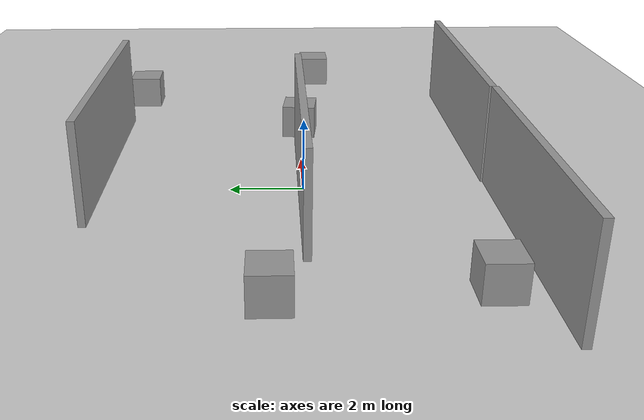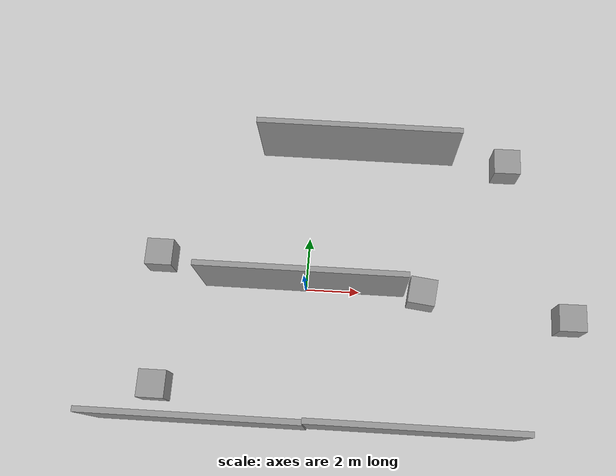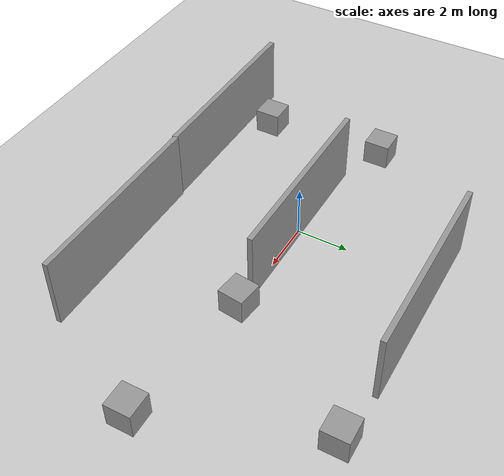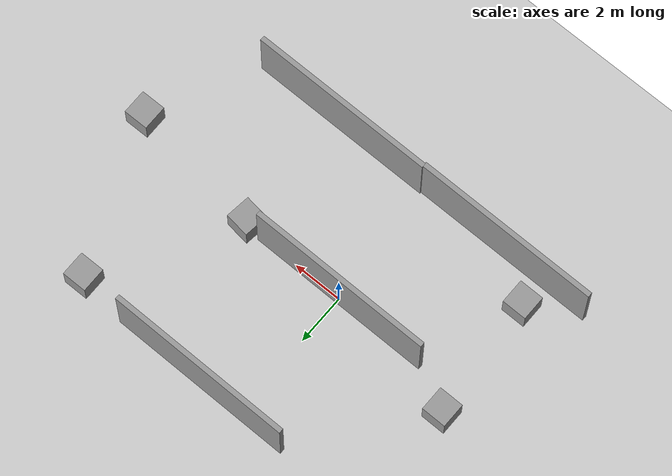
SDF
<sdf version="1.7">
 <world name="default">
  <model name="ground_plane">
   <static>1</static>
   <link name="link">
    <collision name="collision">
     <geometry><plane><normal>0 0 1</normal><size>100 100</size></plane></geometry>
     <surface><friction><ode><mu>100</mu><mu2>50</mu2></ode></friction></surface>
    </collision>
    <visual name="visual">
     <cast_shadows>0</cast_shadows>
     <geometry><plane><normal>0 0 1</normal><size>100 100</size></plane></geometry>
     <material>
      <script><uri>file://media/materials/scripts/gazebo.material</uri><name>Gazebo/Grey</name></script>
     </material>
    </visual>
   </link>
  </model>
  <model name="unit_box_0">
   <pose>-5.16911 -3.96341 0.499995 0 -1e-05 -5e-06</pose>
   <link name="link">
    <inertial>
     <mass>1</mass>
     <inertia>
      <ixx>0.166667</ixx>
      <ixy>0</ixy>
      <ixz>0</ixz>
      <iyy>0.166667</iyy>
      <iyz>0</iyz>
      <izz>0.166667</izz>
     </inertia>
    </inertial>
    <collision name="collision"><geometry><box><size>1 1 1</size></box></geometry></collision>
    <visual name="visual">
     <geometry><box><size>1 1 1</size></box></geometry>
     <material>
      <script><name>Gazebo/Grey</name><uri>file://media/materials/scripts/gazebo.material</uri></script>
     </material>
    </visual>
   </link>
  </model>
  <model name="unit_box_1">
   <pose>-5.49627 0.9014 0.499995 -0 -1e-05 -0.000242</pose>
   <link name="link">
    <inertial>
     <mass>1</mass>
     <inertia>
      <ixx>0.166667</ixx>
      <ixy>0</ixy>
      <ixz>0</ixz>
      <iyy>0.166667</iyy>
      <iyz>0</iyz>
      <izz>0.166667</izz>
     </inertia>
    </inertial>
    <collision name="collision"><geometry><box><size>1 1 1</size></box></geometry></collision>
    <visual name="visual">
     <geometry><box><size>1 1 1</size></box></geometry>
     <material>
      <script><name>Gazebo/Grey</name><uri>file://media/materials/scripts/gazebo.material</uri></script>
     </material>
    </visual>
   </link>
  </model>
  <model name="unit_box_9">
   <pose>4.31524 -0.036115 0.5 0 0 -0.119973</pose>
   <link name="link">
    <inertial>
     <mass>1</mass>
     <inertia>
      <ixx>0.166667</ixx>
      <ixy>0</ixy>
      <ixz>0</ixz>
      <iyy>0.166667</iyy>
      <iyz>0</iyz>
      <izz>0.166667</izz>
     </inertia>
    </inertial>
    <collision name="collision"><geometry><box><size>1 1 1</size></box></geometry></collision>
    <visual name="visual">
     <geometry><box><size>1 1 1</size></box></geometry>
     <material>
      <script><name>Gazebo/Grey</name><uri>file://media/materials/scripts/gazebo.material</uri></script>
     </material>
    </visual>
   </link>
  </model>
  <model name="grey_wall">
   <static>1</static>
   <link name="link">
    <pose>0 0 1.4 0 -0 0</pose>
    <collision name="collision"><geometry><box><size>7.5 0.2 2.8</size></box></geometry></collision>
    <visual name="visual">
     <cast_shadows>0</cast_shadows>
     <geometry><box><size>7.5 0.2 2.8</size></box></geometry>
     <material>
      <script>
       <uri>model://grey_wall/materials/scripts</uri>
       <uri>model://grey_wall/materials/textures</uri>
       <name>vrc/grey_wall</name>
      </script>
     </material>
    </visual>
   </link>
   <pose>4.09532 -5.05186 0 0 -0 0</pose>
  </model>
  <model name="grey_wall_clone">
   <static>1</static>
   <link name="link">
    <pose>0 0 1.4 0 -0 0</pose>
    <collision name="collision"><geometry><box><size>7.5 0.2 2.8</size></box></geometry></collision>
    <visual name="visual">
     <cast_shadows>0</cast_shadows>
     <geometry><box><size>7.5 0.2 2.8</size></box></geometry>
     <material>
      <script>
       <uri>model://grey_wall/materials/scripts</uri>
       <uri>model://grey_wall/materials/textures</uri>
       <name>vrc/grey_wall</name>
      </script>
     </material>
    </visual>
   </link>
   <pose>-3.37906 -5.10536 0 0 -0 0</pose>
  </model>
  <model name="grey_wall_clone_0">
   <static>1</static>
   <link name="link">
    <pose>0 0 1.4 0 -0 0</pose>
    <collision name="collision"><geometry><box><size>7.5 0.2 2.8</size></box></geometry></collision>
    <visual name="visual">
     <cast_shadows>0</cast_shadows>
     <geometry><box><size>7.5 0.2 2.8</size></box></geometry>
     <material>
      <script>
       <uri>model://grey_wall/materials/scripts</uri>
       <uri>model://grey_wall/materials/textures</uri>
       <name>vrc/grey_wall</name>
      </script>
     </material>
    </visual>
   </link>
   <pose>-0.071456 0.050121 0 0 -0 0</pose>
  </model>
  <model name="grey_wall_clone_0_clone_0_clone">
   <static>1</static>
   <link name="link">
    <pose>0 0 1.4 0 -0 0</pose>
    <collision name="collision"><geometry><box><size>7.5 0.2 2.8</size></box></geometry></collision>
    <visual name="visual">
     <cast_shadows>0</cast_shadows>
     <geometry><box><size>7.5 0.2 2.8</size></box></geometry>
     <material>
      <script>
       <uri>model://grey_wall/materials/scripts</uri>
       <uri>model://grey_wall/materials/textures</uri>
       <name>vrc/grey_wall</name>
      </script>
     </material>
    </visual>
   </link>
   <pose>1.66853 5.55754 0 0 -0 0</pose>
  </model>
  <model name="unit_box_clone_2_clone_1">
   <pose>9.76974 -0.724005 0.499995 -0 -1e-05 0.010066</pose>
   <link name="link">
    <inertial>
     <mass>1</mass>
     <inertia>
      <ixx>0.166667</ixx>
      <ixy>0</ixy>
      <ixz>0</ixz>
      <iyy>0.166667</iyy>
      <iyz>0</iyz>
      <izz>0.166667</izz>
     </inertia>
    </inertial>
    <collision name="collision"><geometry><box><size>1 1 1</size></box></geometry></collision>
    <visual name="visual">
     <geometry><box><size>1 1 1</size></box></geometry>
     <material>
      <script><name>Gazebo/Grey</name><uri>file://media/materials/scripts/gazebo.material</uri></script>
     </material>
    </visual>
   </link>
  </model>
  <model name="unit_box_clone_2_clone_0_clone">
   <pose>7.40351 5.29211 0.499995 -1e-05 -0 0.010117</pose>
   <link name="link">
    <inertial>
     <mass>1</mass>
     <inertia>
      <ixx>0.166667</ixx>
      <ixy>0</ixy>
      <ixz>0</ixz>
      <iyy>0.166667</iyy>
      <iyz>0</iyz>
      <izz>0.166667</izz>
     </inertia>
    </inertial>
    <collision name="collision"><geometry><box><size>1 1 1</size></box></geometry></collision>
    <visual name="visual">
     <geometry><box><size>1 1 1</size></box></geometry>
     <material>
      <script><name>Gazebo/Grey</name><uri>file://media/materials/scripts/gazebo.material</uri></script>
     </material>
    </visual>
   </link>
  </model>
 </world>
</sdf>
